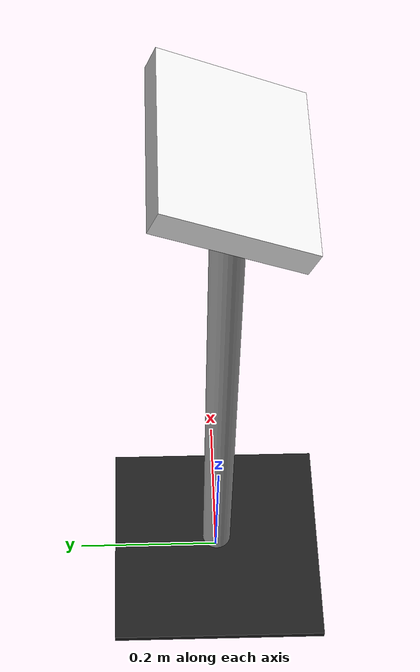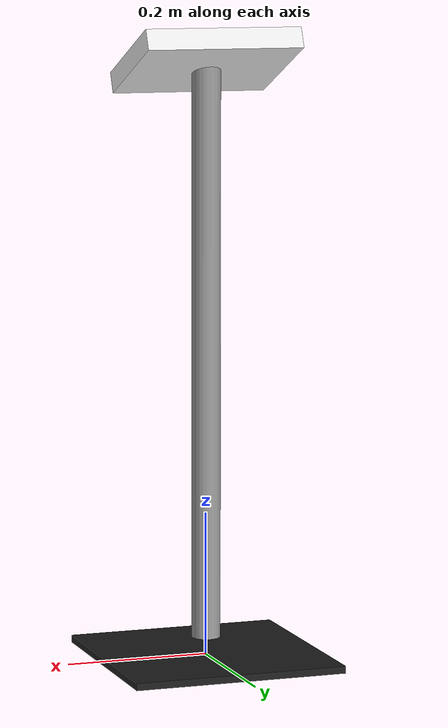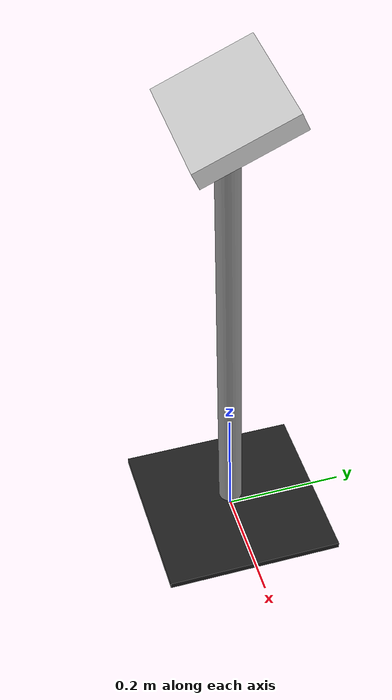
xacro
<?xml version="1.0"?>
<robot name="mainbot" xmlns:xacro="http://ros.org/wiki/xacro">

	<xacro:include filename="$(find project)/urdf/common_properties.xacro"/>
	<xacro:include filename="$(find project)/urdf/mainbot.gazebo.xacro"/>

	<xacro:macro name="visual1" params="length radius color">
                <visual>
                        <geometry>
                                <cylinder length="${length}" radius="${radius}"/>
                        </geometry>
                        <material name="${color}"/>
                </visual>
                <collision>
                        <geometry>
                                <cylinder length="${length}" radius="${radius}"/>
                        </geometry>
                </collision>
        </xacro:macro>

        <xacro:macro name="visual2" params="length width height color">
                <visual>
                        <geometry>
                                <box size="${length} ${width} ${height}"/>
                        </geometry>
                        <material name="${color}"/>
                </visual>
                <collision>
                        <geometry>
                                <box size="${length} ${width} ${height}"/>
                        </geometry>
                </collision>
        </xacro:macro>

        <xacro:macro name="inertial_" params="mass">
                <inertial>
                        <mass value="${mass}"/>
                        <inertia ixx="1.0" ixy="0.0" ixz="0.0" iyy="1.0" iyz="0.0" izz="1.0" />
                </inertial>
        </xacro:macro>

	<link name="base_footprint"/>
	<joint name="fixed" type="fixed">
		<parent link="base_footprint"/>
		<child link="link1"/>
	</joint>

	<link name="link1">
		<xacro:visual2 length="0.3" width="0.3" height="0.01" color="black"/>
		<xacro:inertial_ mass="1"/>
	</link>

	<link name="column">
		<xacro:visual1 length="0.8" radius="0.02" color="grey"/>
		<xacro:inertial_ mass="1"/>
	</link>

	<joint name="column_joint" type="fixed">
		<parent link="link1"/>
		<child link="column"/>
		<origin xyz="0 0 0.425"/>
	</joint>

	<link name="ipad">
		<xacro:visual2 length="0.22" width="0.17" height="0.03" color="white"/>
		<xacro:inertial_ mass="1"/>
	</link>

	<joint name="ipad_joint" type="fixed">
		<parent link="column"/>
		<child link="ipad"/>
		<origin xyz="0 0 0.4" rpy="0.4 0 0"/>
	</joint>

</robot>
